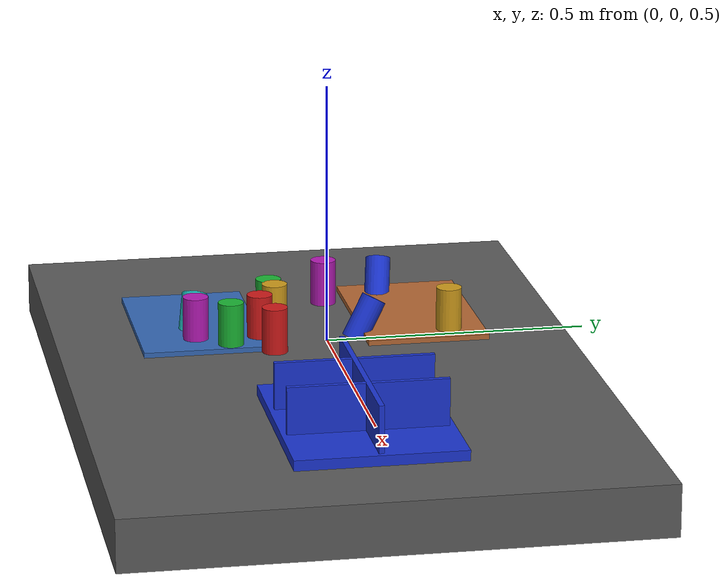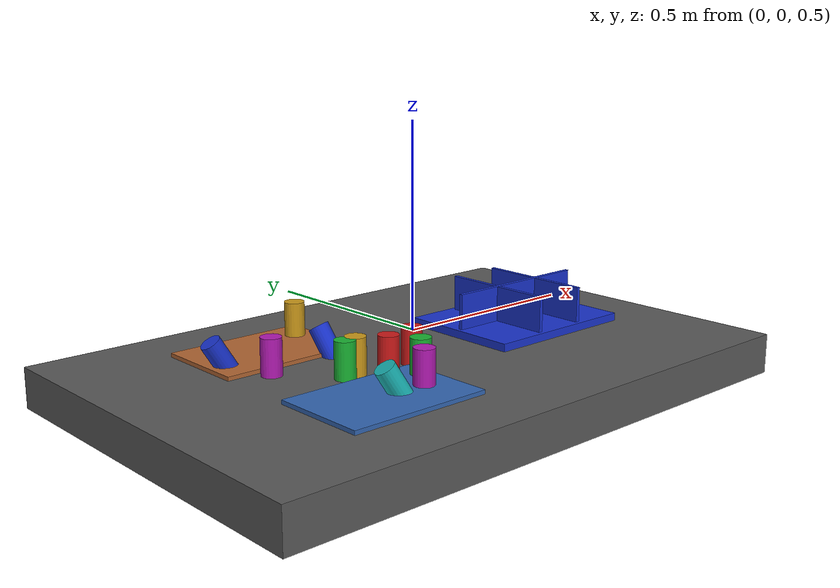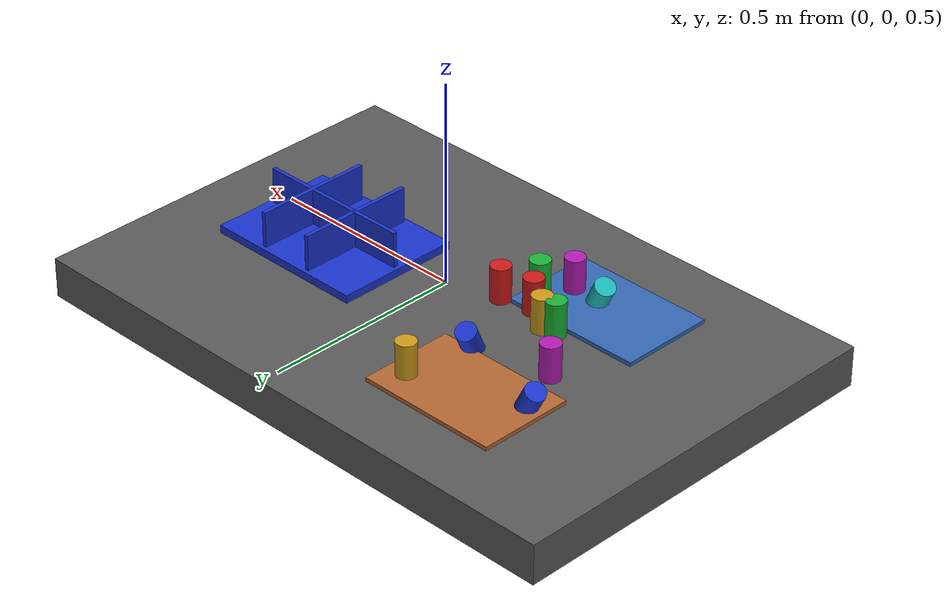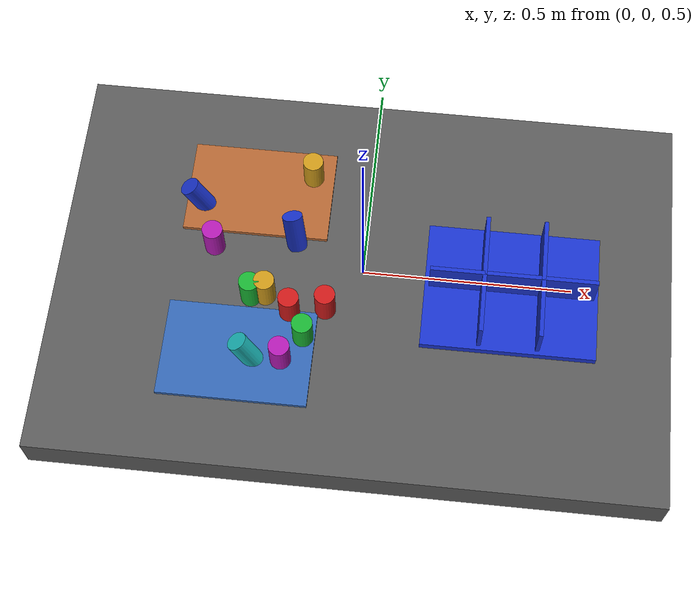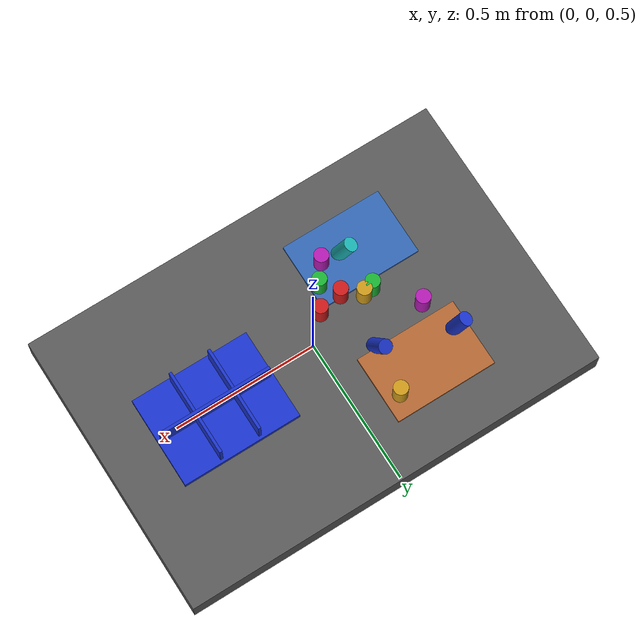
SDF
<?xml version="1.0" ?>
<sdf version="1.9">
  <!-- Standalone M1B scene.  The controller-backed Panda is spawned by the
       existing launch path; this file never alters the frozen M1A cube world. -->
  <world name="industrial_cylinder_v1">
    <physics name="bullet" type="bullet"><max_step_size>0.001</max_step_size><real_time_factor>1.0</real_time_factor></physics>
    <plugin name="gz::sim::systems::Physics" filename="gz-sim-physics-system"><engine><filename>gz-physics-bullet-featherstone-plugin</filename></engine></plugin>
    <plugin name="gz::sim::systems::UserCommands" filename="gz-sim-user-commands-system"/>
    <plugin name="gz::sim::systems::SceneBroadcaster" filename="gz-sim-scene-broadcaster-system"/>
    <plugin name="gz::sim::systems::Sensors" filename="gz-sim-sensors-system"><render_engine>ogre2</render_engine></plugin>
    <gravity>0 0 -9.81</gravity>
    <light type="directional" name="industrial_light"><pose>0 0 5 0 0 0</pose><direction>-0.3 0.2 -0.9</direction><diffuse>0.9 0.9 0.9 1</diffuse></light>
    <model name="industrial_work_table"><static>true</static><link name="link"><pose>0 0 0.4 0 0 0</pose><collision name="collision"><geometry><box><size>1.5 1.0 0.1</size></box></geometry></collision><visual name="visual"><geometry><box><size>1.5 1.0 0.1</size></box></geometry><material><diffuse>0.35 0.35 0.35 1</diffuse></material></visual></link></model>
    <model name="camera_fixture"><static>true</static><link name="camera_rgbd"><pose>-0.80 -0.80 1.40 0 0.77 0.93</pose><sensor name="front_rgbd" type="rgbd_camera"><always_on>1</always_on><update_rate>15</update_rate><topic>/xh/camera/rgbd</topic><camera><horizontal_fov>1.047</horizontal_fov><image><width>640</width><height>480</height><format>R8G8B8</format></image><clip><near>0.1</near><far>4.0</far></clip></camera></sensor></link></model>
    <model name="incoming_zone_a"><static>true</static><link name="link"><pose>-0.28 -0.22 0.455 0 0 0</pose><visual name="visual"><geometry><box><size>0.36 0.24 0.01</size></box></geometry><material><diffuse>0.2 0.4 0.7 1</diffuse></material></visual></link></model>
    <model name="incoming_zone_b"><static>true</static><link name="link"><pose>-0.28 0.22 0.455 0 0 0</pose><visual name="visual"><geometry><box><size>0.36 0.24 0.01</size></box></geometry><material><diffuse>0.7 0.4 0.2 1</diffuse></material></visual></link></model>
    <!-- M1B_RANDOM_PARTS_BEGIN -->
    <model name="cylinder_01"><pose>-0.1679 -0.1041 0.5000 0.0000 0.0000 -1.7040</pose><link name="link"><inertial><mass>0.06</mass></inertial><collision name="collision"><geometry><cylinder><radius>0.025</radius><length>0.09</length></cylinder></geometry></collision><visual name="visual"><geometry><cylinder><radius>0.025</radius><length>0.09</length></cylinder></geometry><material><diffuse>0.800 0.100 0.100 1</diffuse><specular>0.15 0.15 0.15 1</specular></material></visual></link></model>
    <model name="cylinder_02"><pose>-0.2659 -0.0713 0.5000 3.1416 0.0000 2.4041</pose><link name="link"><inertial><mass>0.06</mass></inertial><collision name="collision"><geometry><cylinder><radius>0.025</radius><length>0.09</length></cylinder></geometry></collision><visual name="visual"><geometry><cylinder><radius>0.025</radius><length>0.09</length></cylinder></geometry><material><diffuse>0.100 0.700 0.200 1</diffuse><specular>0.15 0.15 0.15 1</specular></material></visual></link></model>
    <model name="cylinder_03"><pose>-0.1794 0.1047 0.4800 0.4500 -0.3000 -2.2420</pose><link name="link"><inertial><mass>0.06</mass></inertial><collision name="collision"><geometry><cylinder><radius>0.025</radius><length>0.09</length></cylinder></geometry></collision><visual name="visual"><geometry><cylinder><radius>0.025</radius><length>0.09</length></cylinder></geometry><material><diffuse>0.100 0.200 0.800 1</diffuse><specular>0.15 0.15 0.15 1</specular></material></visual></link></model>
    <model name="cylinder_04"><pose>-0.1513 0.2689 0.5000 0.0000 0.0000 1.7025</pose><link name="link"><inertial><mass>0.06</mass></inertial><collision name="collision"><geometry><cylinder><radius>0.025</radius><length>0.09</length></cylinder></geometry></collision><visual name="visual"><geometry><cylinder><radius>0.025</radius><length>0.09</length></cylinder></geometry><material><diffuse>0.800 0.600 0.100 1</diffuse><specular>0.15 0.15 0.15 1</specular></material></visual></link></model>
    <model name="cylinder_05"><pose>-0.1745 -0.2292 0.5000 3.1416 0.0000 0.7604</pose><link name="link"><inertial><mass>0.06</mass></inertial><collision name="collision"><geometry><cylinder><radius>0.025</radius><length>0.09</length></cylinder></geometry></collision><visual name="visual"><geometry><cylinder><radius>0.025</radius><length>0.09</length></cylinder></geometry><material><diffuse>0.700 0.100 0.700 1</diffuse><specular>0.15 0.15 0.15 1</specular></material></visual></link></model>
    <model name="cylinder_06"><pose>-0.2555 -0.2243 0.4800 0.4500 -0.3000 -1.3600</pose><link name="link"><inertial><mass>0.06</mass></inertial><collision name="collision"><geometry><cylinder><radius>0.025</radius><length>0.09</length></cylinder></geometry></collision><visual name="visual"><geometry><cylinder><radius>0.025</radius><length>0.09</length></cylinder></geometry><material><diffuse>0.100 0.700 0.700 1</diffuse><specular>0.15 0.15 0.15 1</specular></material></visual></link></model>
    <model name="cylinder_07"><pose>-0.0830 -0.0878 0.5000 0.0000 0.0000 1.8034</pose><link name="link"><inertial><mass>0.06</mass></inertial><collision name="collision"><geometry><cylinder><radius>0.025</radius><length>0.09</length></cylinder></geometry></collision><visual name="visual"><geometry><cylinder><radius>0.025</radius><length>0.09</length></cylinder></geometry><material><diffuse>0.800 0.100 0.100 1</diffuse><specular>0.15 0.15 0.15 1</specular></material></visual></link></model>
    <model name="cylinder_08"><pose>-0.1278 -0.1666 0.5000 3.1416 0.0000 1.9235</pose><link name="link"><inertial><mass>0.06</mass></inertial><collision name="collision"><geometry><cylinder><radius>0.025</radius><length>0.09</length></cylinder></geometry></collision><visual name="visual"><geometry><cylinder><radius>0.025</radius><length>0.09</length></cylinder></geometry><material><diffuse>0.100 0.700 0.200 1</diffuse><specular>0.15 0.15 0.15 1</specular></material></visual></link></model>
    <model name="cylinder_09"><pose>-0.4279 0.1781 0.4800 0.4500 -0.3000 -1.2695</pose><link name="link"><inertial><mass>0.06</mass></inertial><collision name="collision"><geometry><cylinder><radius>0.025</radius><length>0.09</length></cylinder></geometry></collision><visual name="visual"><geometry><cylinder><radius>0.025</radius><length>0.09</length></cylinder></geometry><material><diffuse>0.100 0.200 0.800 1</diffuse><specular>0.15 0.15 0.15 1</specular></material></visual></link></model>
    <model name="cylinder_10"><pose>-0.2310 -0.0647 0.5000 0.0000 0.0000 -1.6201</pose><link name="link"><inertial><mass>0.06</mass></inertial><collision name="collision"><geometry><cylinder><radius>0.025</radius><length>0.09</length></cylinder></geometry></collision><visual name="visual"><geometry><cylinder><radius>0.025</radius><length>0.09</length></cylinder></geometry><material><diffuse>0.800 0.600 0.100 1</diffuse><specular>0.15 0.15 0.15 1</specular></material></visual></link></model>
    <model name="cylinder_11"><pose>-0.3725 0.0569 0.5000 3.1416 0.0000 -1.3499</pose><link name="link"><inertial><mass>0.06</mass></inertial><collision name="collision"><geometry><cylinder><radius>0.025</radius><length>0.09</length></cylinder></geometry></collision><visual name="visual"><geometry><cylinder><radius>0.025</radius><length>0.09</length></cylinder></geometry><material><diffuse>0.700 0.100 0.700 1</diffuse><specular>0.15 0.15 0.15 1</specular></material></visual></link></model>
    <!-- M1B_RANDOM_PARTS_END -->
    <model name="blue_partition_bin"><static>true</static><pose>0.36 0 0.45 0 0 0</pose><link name="link"><collision name="floor"><pose>0 0 0.01 0 0 0</pose><geometry><box><size>0.42 0.32 0.02</size></box></geometry></collision><visual name="floor_visual"><pose>0 0 0.01 0 0 0</pose><geometry><box><size>0.42 0.32 0.02</size></box></geometry><material><diffuse>0.1 0.2 0.8 1</diffuse></material></visual><visual name="row_divider"><pose>0 0 0.06 0 0 0</pose><geometry><box><size>0.40 0.01 0.10</size></box></geometry><material><diffuse>0.1 0.2 0.8 1</diffuse></material></visual><visual name="col_divider_a"><pose>-0.07 0 0.06 0 0 0</pose><geometry><box><size>0.01 0.30 0.10</size></box></geometry><material><diffuse>0.1 0.2 0.8 1</diffuse></material></visual><visual name="col_divider_b"><pose>0.07 0 0.06 0 0 0</pose><geometry><box><size>0.01 0.30 0.10</size></box></geometry><material><diffuse>0.1 0.2 0.8 1</diffuse></material></visual></link></model>
    <!-- Reserved only: second table, bin transport corridor, stackable-bin
         collision volume, and second arm mounting namespace. -->
  </world>
</sdf>
